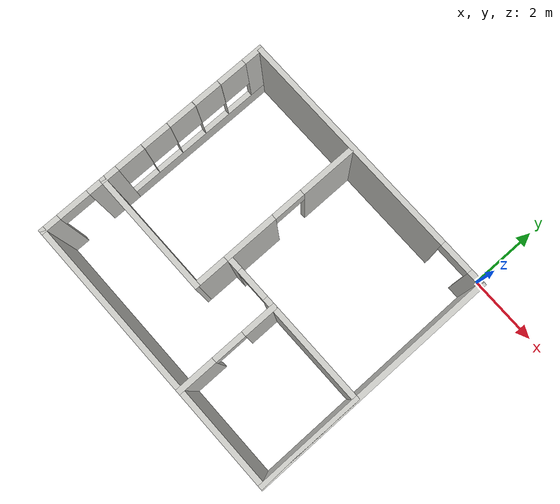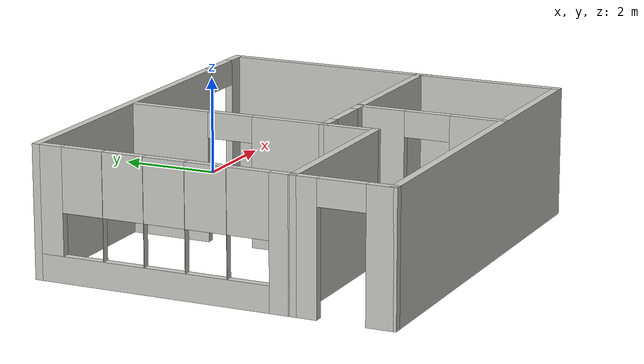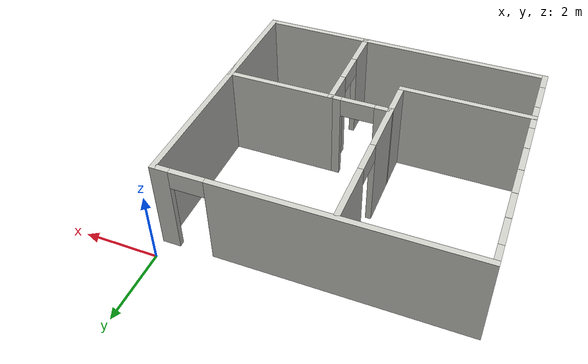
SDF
<?xml version='1.0'?>
<sdf version='1.7'>
  <model name='Four_room_new'>
    <pose>-3.90695 -3.74102 0 0 -0 0</pose>
    <link name='Wall_54'>
      <collision name='Wall_54_Collision'>
        <geometry>
          <box>
            <size>6.97687 0.15 2.5</size>
          </box>
        </geometry>
        <pose>0 0 1.25 0 -0 0</pose>
      </collision>
      <visual name='Wall_54_Visual'>
        <pose>0 0 1.25 0 -0 0</pose>
        <geometry>
          <box>
            <size>6.97687 0.15 2.5</size>
          </box>
        </geometry>
        <material>
          <script>
            <uri>file://media/materials/scripts/gazebo.material</uri>
            <name>Gazebo/CeilingTiled</name>
          </script>
          <ambient>1 1 1 1</ambient>
        </material>
        <meta>
          <layer>0</layer>
        </meta>
      </visual>
      <pose>3.92501 -0.252497 0 0 -0 -1.57078</pose>
    </link>
    <link name='Wall_56'>
      <collision name='Wall_56_Collision'>
        <geometry>
          <box>
            <size>8 0.15 2.5</size>
          </box>
        </geometry>
        <pose>0 0 1.25 0 -0 0</pose>
      </collision>
      <visual name='Wall_56_Visual'>
        <pose>0 0 1.25 0 -0 0</pose>
        <geometry>
          <box>
            <size>8 0.15 2.5</size>
          </box>
        </geometry>
        <material>
          <script>
            <uri>file://media/materials/scripts/gazebo.material</uri>
            <name>Gazebo/CeilingTiled</name>
          </script>
          <ambient>1 1 1 1</ambient>
        </material>
        <meta>
          <layer>0</layer>
        </meta>
      </visual>
      <pose>7e-05 -3.66601 0 0 -0 3.14159</pose>
    </link>
    <link name='Wall_58'>
      <collision name='Wall_58_Collision'>
        <geometry>
          <box>
            <size>3 0.15 2.5</size>
          </box>
        </geometry>
        <pose>0 0 1.25 0 -0 0</pose>
      </collision>
      <visual name='Wall_58_Visual'>
        <pose>0 0 1.25 0 -0 0</pose>
        <geometry>
          <box>
            <size>3 0.15 2.5</size>
          </box>
        </geometry>
        <material>
          <script>
            <uri>file://media/materials/scripts/gazebo.material</uri>
            <name>Gazebo/CeilingTiled</name>
          </script>
          <ambient>1 1 1 1</ambient>
        </material>
        <meta>
          <layer>0</layer>
        </meta>
      </visual>
      <pose>3.92507 -2.24101 0 0 -0 1.5708</pose>
    </link>
    <link name='Wall_59'>
      <collision name='Wall_59_Collision'>
        <geometry>
          <box>
            <size>3 0.15 2.5</size>
          </box>
        </geometry>
        <pose>0 0 1.25 0 -0 0</pose>
      </collision>
      <visual name='Wall_59_Visual'>
        <pose>0 0 1.25 0 -0 0</pose>
        <geometry>
          <box>
            <size>3 0.15 2.5</size>
          </box>
        </geometry>
        <material>
          <script>
            <uri>file://media/materials/scripts/gazebo.material</uri>
            <name>Gazebo/CeilingTiled</name>
          </script>
          <ambient>1 1 1 1</ambient>
        </material>
        <meta>
          <layer>0</layer>
        </meta>
      </visual>
      <pose>2.50007 -0.816012 0 0 -0 3.14159</pose>
    </link>
    <link name='Wall_60'>
      <pose>1.07507 -2.24101 0 0 -0 -1.5708</pose>
      <visual name='Wall_60_Visual_0'>
        <pose>-1.00086 0 1.25 0 -0 0</pose>
        <geometry>
          <box>
            <size>0.998281 0.15 2.5</size>
          </box>
        </geometry>
        <material>
          <script>
            <uri>file://media/materials/scripts/gazebo.material</uri>
            <name>Gazebo/CeilingTiled</name>
          </script>
          <ambient>1 1 1 1</ambient>
        </material>
        <meta>
          <layer>0</layer>
        </meta>
      </visual>
      <collision name='Wall_60_Collision_0'>
        <geometry>
          <box>
            <size>0.998281 0.15 2.5</size>
          </box>
        </geometry>
        <pose>-1.00086 0 1.25 0 -0 0</pose>
      </collision>
      <visual name='Wall_60_Visual_1'>
        <pose>0.94914 0 1.25 0 -0 0</pose>
        <geometry>
          <box>
            <size>1.10172 0.15 2.5</size>
          </box>
        </geometry>
        <material>
          <script>
            <uri>file://media/materials/scripts/gazebo.material</uri>
            <name>Gazebo/CeilingTiled</name>
          </script>
          <ambient>1 1 1 1</ambient>
        </material>
        <meta>
          <layer>0</layer>
        </meta>
      </visual>
      <collision name='Wall_60_Collision_1'>
        <geometry>
          <box>
            <size>1.10172 0.15 2.5</size>
          </box>
        </geometry>
        <pose>0.94914 0 1.25 0 -0 0</pose>
      </collision>
      <visual name='Wall_60_Visual_2'>
        <pose>-0.051719 0 2.25 0 -0 0</pose>
        <geometry>
          <box>
            <size>0.9 0.15 0.5</size>
          </box>
        </geometry>
        <material>
          <script>
            <uri>file://media/materials/scripts/gazebo.material</uri>
            <name>Gazebo/CeilingTiled</name>
          </script>
          <ambient>1 1 1 1</ambient>
        </material>
        <meta>
          <layer>0</layer>
        </meta>
      </visual>
      <collision name='Wall_60_Collision_2'>
        <geometry>
          <box>
            <size>0.9 0.15 0.5</size>
          </box>
        </geometry>
        <pose>-0.051719 0 2.25 0 -0 0</pose>
      </collision>
    </link>
    <link name='Wall_63'>
      <pose>-5.4e-05 3.16102 0 0 -0 0</pose>
      <visual name='Wall_63_Visual_0'>
        <pose>-0.694839 0 1.25 0 -0 0</pose>
        <geometry>
          <box>
            <size>6.61036 0.15 2.5</size>
          </box>
        </geometry>
        <material>
          <script>
            <uri>file://media/materials/scripts/gazebo.material</uri>
            <name>Gazebo/CeilingTiled</name>
          </script>
          <ambient>1 1 1 1</ambient>
        </material>
        <meta>
          <layer>0</layer>
        </meta>
      </visual>
      <collision name='Wall_63_Collision_0'>
        <geometry>
          <box>
            <size>6.61036 0.15 2.5</size>
          </box>
        </geometry>
        <pose>-0.694839 0 1.25 0 -0 0</pose>
      </collision>
      <visual name='Wall_63_Visual_1'>
        <pose>3.75518 0 1.25 0 -0 0</pose>
        <geometry>
          <box>
            <size>0.489677 0.15 2.5</size>
          </box>
        </geometry>
        <material>
          <script>
            <uri>file://media/materials/scripts/gazebo.material</uri>
            <name>Gazebo/CeilingTiled</name>
          </script>
          <ambient>1 1 1 1</ambient>
        </material>
        <meta>
          <layer>0</layer>
        </meta>
      </visual>
      <collision name='Wall_63_Collision_1'>
        <geometry>
          <box>
            <size>0.489677 0.15 2.5</size>
          </box>
        </geometry>
        <pose>3.75518 0 1.25 0 -0 0</pose>
      </collision>
      <visual name='Wall_63_Visual_2'>
        <pose>3.06034 0 2.25 0 -0 0</pose>
        <geometry>
          <box>
            <size>0.9 0.15 0.5</size>
          </box>
        </geometry>
        <material>
          <script>
            <uri>file://media/materials/scripts/gazebo.material</uri>
            <name>Gazebo/CeilingTiled</name>
          </script>
          <ambient>1 1 1 1</ambient>
        </material>
        <meta>
          <layer>0</layer>
        </meta>
      </visual>
      <collision name='Wall_63_Collision_2'>
        <geometry>
          <box>
            <size>0.9 0.15 0.5</size>
          </box>
        </geometry>
        <pose>3.06034 0 2.25 0 -0 0</pose>
      </collision>
    </link>
    <link name='Wall_65'>
      <pose>-3.92499 -2.741 0 0 -0 1.57086</pose>
      <visual name='Wall_65_Visual_0'>
        <pose>-0.718274 0 1.25 0 -0 0</pose>
        <geometry>
          <box>
            <size>0.563482 0.15 2.5</size>
          </box>
        </geometry>
        <material>
          <script>
            <uri>file://media/materials/scripts/gazebo.material</uri>
            <name>Gazebo/CeilingTiled</name>
          </script>
          <ambient>1 1 1 1</ambient>
        </material>
        <meta>
          <layer>0</layer>
        </meta>
      </visual>
      <collision name='Wall_65_Collision_0'>
        <geometry>
          <box>
            <size>0.563482 0.15 2.5</size>
          </box>
        </geometry>
        <pose>-0.718274 0 1.25 0 -0 0</pose>
      </collision>
      <visual name='Wall_65_Visual_1'>
        <pose>0.731741 0 1.25 0 -0 0</pose>
        <geometry>
          <box>
            <size>0.536547 0.15 2.5</size>
          </box>
        </geometry>
        <material>
          <script>
            <uri>file://media/materials/scripts/gazebo.material</uri>
            <name>Gazebo/CeilingTiled</name>
          </script>
          <ambient>1 1 1 1</ambient>
        </material>
        <meta>
          <layer>0</layer>
        </meta>
      </visual>
      <collision name='Wall_65_Collision_1'>
        <geometry>
          <box>
            <size>0.536547 0.15 2.5</size>
          </box>
        </geometry>
        <pose>0.731741 0 1.25 0 -0 0</pose>
      </collision>
      <visual name='Wall_65_Visual_2'>
        <pose>0.013467 0 2.25 0 -0 0</pose>
        <geometry>
          <box>
            <size>0.9 0.15 0.5</size>
          </box>
        </geometry>
        <material>
          <script>
            <uri>file://media/materials/scripts/gazebo.material</uri>
            <name>Gazebo/CeilingTiled</name>
          </script>
          <ambient>1 1 1 1</ambient>
        </material>
        <meta>
          <layer>0</layer>
        </meta>
      </visual>
      <collision name='Wall_65_Collision_2'>
        <geometry>
          <box>
            <size>0.9 0.15 0.5</size>
          </box>
        </geometry>
        <pose>0.013467 0 2.25 0 -0 0</pose>
      </collision>
    </link>
    <link name='Wall_66'>
      <collision name='Wall_66_Collision'>
        <geometry>
          <box>
            <size>3.55 0.15 2.5</size>
          </box>
        </geometry>
        <pose>0 0 1.25 0 -0 0</pose>
      </collision>
      <visual name='Wall_66_Visual'>
        <pose>0 0 1.25 0 -0 0</pose>
        <geometry>
          <box>
            <size>3.55 0.15 2.5</size>
          </box>
        </geometry>
        <material>
          <script>
            <uri>file://media/materials/scripts/gazebo.material</uri>
            <name>Gazebo/CeilingTiled</name>
          </script>
          <ambient>1 1 1 1</ambient>
        </material>
        <meta>
          <layer>0</layer>
        </meta>
      </visual>
      <pose>-2.22505 -1.81598 0 0 -0 0</pose>
    </link>
    <link name='Wall_68'>
      <pose>0.27507 -0.816012 0 0 -0 3.14159</pose>
      <visual name='Wall_68_Visual_0'>
        <pose>-0.692933 0 1.25 0 -0 0</pose>
        <geometry>
          <box>
            <size>0.364134 0.15 2.5</size>
          </box>
        </geometry>
        <material>
          <script>
            <uri>file://media/materials/scripts/gazebo.material</uri>
            <name>Gazebo/CeilingTiled</name>
          </script>
          <ambient>1 1 1 1</ambient>
        </material>
        <meta>
          <layer>0</layer>
        </meta>
      </visual>
      <collision name='Wall_68_Collision_0'>
        <geometry>
          <box>
            <size>0.364134 0.15 2.5</size>
          </box>
        </geometry>
        <pose>-0.692933 0 1.25 0 -0 0</pose>
      </collision>
      <visual name='Wall_68_Visual_1'>
        <pose>0.632067 0 1.25 0 -0 0</pose>
        <geometry>
          <box>
            <size>0.485866 0.15 2.5</size>
          </box>
        </geometry>
        <material>
          <script>
            <uri>file://media/materials/scripts/gazebo.material</uri>
            <name>Gazebo/CeilingTiled</name>
          </script>
          <ambient>1 1 1 1</ambient>
        </material>
        <meta>
          <layer>0</layer>
        </meta>
      </visual>
      <collision name='Wall_68_Collision_1'>
        <geometry>
          <box>
            <size>0.485866 0.15 2.5</size>
          </box>
        </geometry>
        <pose>0.632067 0 1.25 0 -0 0</pose>
      </collision>
      <visual name='Wall_68_Visual_2'>
        <pose>-0.060866 0 2.25 0 -0 0</pose>
        <geometry>
          <box>
            <size>0.9 0.15 0.5</size>
          </box>
        </geometry>
        <material>
          <script>
            <uri>file://media/materials/scripts/gazebo.material</uri>
            <name>Gazebo/CeilingTiled</name>
          </script>
          <ambient>1 1 1 1</ambient>
        </material>
        <meta>
          <layer>0</layer>
        </meta>
      </visual>
      <collision name='Wall_68_Collision_2'>
        <geometry>
          <box>
            <size>0.9 0.15 0.5</size>
          </box>
        </geometry>
        <pose>-0.060866 0 2.25 0 -0 0</pose>
      </collision>
    </link>
    <link name='Wall_69'>
      <collision name='Wall_69_Collision'>
        <geometry>
          <box>
            <size>1.14997 0.15 2.5</size>
          </box>
        </geometry>
        <pose>0 0 1.25 0 -0 0</pose>
      </collision>
      <visual name='Wall_69_Visual'>
        <pose>0 0 1.25 0 -0 0</pose>
        <geometry>
          <box>
            <size>1.14997 0.15 2.5</size>
          </box>
        </geometry>
        <material>
          <script>
            <uri>file://media/materials/scripts/gazebo.material</uri>
            <name>Gazebo/CeilingTiled</name>
          </script>
          <ambient>1 1 1 1</ambient>
        </material>
        <meta>
          <layer>0</layer>
        </meta>
      </visual>
      <pose>-0.524992 -1.316 0 0 -0 -1.57092</pose>
    </link>
    <link name='Wall_71'>
      <pose>-0.52493 1.10899 0 0 -0 1.5708</pose>
      <visual name='Wall_71_Visual_0'>
        <pose>-1.24547 0 1.25 0 -0 0</pose>
        <geometry>
          <box>
            <size>1.50906 0.15 2.5</size>
          </box>
        </geometry>
        <material>
          <script>
            <uri>file://media/materials/scripts/gazebo.material</uri>
            <name>Gazebo/CeilingTiled</name>
          </script>
          <ambient>1 1 1 1</ambient>
        </material>
        <meta>
          <layer>0</layer>
        </meta>
      </visual>
      <collision name='Wall_71_Collision_0'>
        <geometry>
          <box>
            <size>1.50906 0.15 2.5</size>
          </box>
        </geometry>
        <pose>-1.24547 0 1.25 0 -0 0</pose>
      </collision>
      <visual name='Wall_71_Visual_1'>
        <pose>1.20453 0 1.25 0 -0 0</pose>
        <geometry>
          <box>
            <size>1.59094 0.15 2.5</size>
          </box>
        </geometry>
        <material>
          <script>
            <uri>file://media/materials/scripts/gazebo.material</uri>
            <name>Gazebo/CeilingTiled</name>
          </script>
          <ambient>1 1 1 1</ambient>
        </material>
        <meta>
          <layer>0</layer>
        </meta>
      </visual>
      <collision name='Wall_71_Collision_1'>
        <geometry>
          <box>
            <size>1.59094 0.15 2.5</size>
          </box>
        </geometry>
        <pose>1.20453 0 1.25 0 -0 0</pose>
      </collision>
      <visual name='Wall_71_Visual_2'>
        <pose>-0.040941 0 2.25 0 -0 0</pose>
        <geometry>
          <box>
            <size>0.9 0.15 0.5</size>
          </box>
        </geometry>
        <material>
          <script>
            <uri>file://media/materials/scripts/gazebo.material</uri>
            <name>Gazebo/CeilingTiled</name>
          </script>
          <ambient>1 1 1 1</ambient>
        </material>
        <meta>
          <layer>0</layer>
        </meta>
      </visual>
      <collision name='Wall_71_Collision_2'>
        <geometry>
          <box>
            <size>0.9 0.15 0.5</size>
          </box>
        </geometry>
        <pose>-0.040941 0 2.25 0 -0 0</pose>
      </collision>
    </link>
    <link name='Wall_77'>
      <pose>-3.92505 0.672517 0 0 -0 1.5708</pose>
      <visual name='Wall_77_Visual_0'>
        <pose>-2.30892 0 1.25 0 -0 0</pose>
        <geometry>
          <box>
            <size>0.509155 0.15 2.5</size>
          </box>
        </geometry>
        <material>
          <script>
            <uri>file://media/materials/scripts/gazebo.material</uri>
            <name>Gazebo/CeilingTiled</name>
          </script>
          <ambient>1 1 1 1</ambient>
        </material>
        <meta>
          <layer>0</layer>
        </meta>
      </visual>
      <collision name='Wall_77_Collision_0'>
        <geometry>
          <box>
            <size>0.509155 0.15 2.5</size>
          </box>
        </geometry>
        <pose>-2.30892 0 1.25 0 -0 0</pose>
      </collision>
      <visual name='Wall_77_Visual_1'>
        <pose>0.254578 0 0.25 0 -0 0</pose>
        <geometry>
          <box>
            <size>4.61784 0.15 0.5</size>
          </box>
        </geometry>
        <material>
          <script>
            <uri>file://media/materials/scripts/gazebo.material</uri>
            <name>Gazebo/CeilingTiled</name>
          </script>
          <ambient>1 1 1 1</ambient>
        </material>
        <meta>
          <layer>0</layer>
        </meta>
      </visual>
      <collision name='Wall_77_Collision_1'>
        <geometry>
          <box>
            <size>4.61784 0.15 0.5</size>
          </box>
        </geometry>
        <pose>0.254578 0 0.25 0 -0 0</pose>
      </collision>
      <visual name='Wall_77_Visual_2'>
        <pose>-1.25098 0 1.5 0 -0 0</pose>
        <geometry>
          <box>
            <size>0.006725 0.15 2</size>
          </box>
        </geometry>
        <material>
          <script>
            <uri>file://media/materials/scripts/gazebo.material</uri>
            <name>Gazebo/CeilingTiled</name>
          </script>
          <ambient>1 1 1 1</ambient>
        </material>
        <meta>
          <layer>0</layer>
        </meta>
      </visual>
      <collision name='Wall_77_Collision_2'>
        <geometry>
          <box>
            <size>0.006725 0.15 2</size>
          </box>
        </geometry>
        <pose>-1.25098 0 1.5 0 -0 0</pose>
      </collision>
      <visual name='Wall_77_Visual_3'>
        <pose>-0.444257 0 1.5 0 -0 0</pose>
        <geometry>
          <box>
            <size>0.006725 0.15 2</size>
          </box>
        </geometry>
        <material>
          <script>
            <uri>file://media/materials/scripts/gazebo.material</uri>
            <name>Gazebo/CeilingTiled</name>
          </script>
          <ambient>1 1 1 1</ambient>
        </material>
        <meta>
          <layer>0</layer>
        </meta>
      </visual>
      <collision name='Wall_77_Collision_3'>
        <geometry>
          <box>
            <size>0.006725 0.15 2</size>
          </box>
        </geometry>
        <pose>-0.444257 0 1.5 0 -0 0</pose>
      </collision>
      <visual name='Wall_77_Visual_4'>
        <pose>0.362468 0 1.5 0 -0 0</pose>
        <geometry>
          <box>
            <size>0.006725 0.15 2</size>
          </box>
        </geometry>
        <material>
          <script>
            <uri>file://media/materials/scripts/gazebo.material</uri>
            <name>Gazebo/CeilingTiled</name>
          </script>
          <ambient>1 1 1 1</ambient>
        </material>
        <meta>
          <layer>0</layer>
        </meta>
      </visual>
      <collision name='Wall_77_Collision_4'>
        <geometry>
          <box>
            <size>0.006725 0.15 2</size>
          </box>
        </geometry>
        <pose>0.362468 0 1.5 0 -0 0</pose>
      </collision>
      <visual name='Wall_77_Visual_5'>
        <pose>1.16919 0 1.5 0 -0 0</pose>
        <geometry>
          <box>
            <size>0.006725 0.15 2</size>
          </box>
        </geometry>
        <material>
          <script>
            <uri>file://media/materials/scripts/gazebo.material</uri>
            <name>Gazebo/CeilingTiled</name>
          </script>
          <ambient>1 1 1 1</ambient>
        </material>
        <meta>
          <layer>0</layer>
        </meta>
      </visual>
      <collision name='Wall_77_Collision_5'>
        <geometry>
          <box>
            <size>0.006725 0.15 2</size>
          </box>
        </geometry>
        <pose>1.16919 0 1.5 0 -0 0</pose>
      </collision>
      <visual name='Wall_77_Visual_6'>
        <pose>2.26803 0 1.5 0 -0 0</pose>
        <geometry>
          <box>
            <size>0.590945 0.15 2</size>
          </box>
        </geometry>
        <material>
          <script>
            <uri>file://media/materials/scripts/gazebo.material</uri>
            <name>Gazebo/CeilingTiled</name>
          </script>
          <ambient>1 1 1 1</ambient>
        </material>
        <meta>
          <layer>0</layer>
        </meta>
      </visual>
      <collision name='Wall_77_Collision_6'>
        <geometry>
          <box>
            <size>0.590945 0.15 2</size>
          </box>
        </geometry>
        <pose>2.26803 0 1.5 0 -0 0</pose>
      </collision>
      <visual name='Wall_77_Visual_7'>
        <pose>-1.65434 0 1.9 0 -0 0</pose>
        <geometry>
          <box>
            <size>0.8 0.15 1.2</size>
          </box>
        </geometry>
        <material>
          <script>
            <uri>file://media/materials/scripts/gazebo.material</uri>
            <name>Gazebo/CeilingTiled</name>
          </script>
          <ambient>1 1 1 1</ambient>
        </material>
        <meta>
          <layer>0</layer>
        </meta>
      </visual>
      <collision name='Wall_77_Collision_7'>
        <geometry>
          <box>
            <size>0.8 0.15 1.2</size>
          </box>
        </geometry>
        <pose>-1.65434 0 1.9 0 -0 0</pose>
      </collision>
      <visual name='Wall_77_Visual_8'>
        <pose>-0.84762 0 1.9 0 -0 0</pose>
        <geometry>
          <box>
            <size>0.8 0.15 1.2</size>
          </box>
        </geometry>
        <material>
          <script>
            <uri>file://media/materials/scripts/gazebo.material</uri>
            <name>Gazebo/CeilingTiled</name>
          </script>
          <ambient>1 1 1 1</ambient>
        </material>
        <meta>
          <layer>0</layer>
        </meta>
      </visual>
      <collision name='Wall_77_Collision_8'>
        <geometry>
          <box>
            <size>0.8 0.15 1.2</size>
          </box>
        </geometry>
        <pose>-0.84762 0 1.9 0 -0 0</pose>
      </collision>
      <visual name='Wall_77_Visual_9'>
        <pose>-0.040895 0 1.9 0 -0 0</pose>
        <geometry>
          <box>
            <size>0.8 0.15 1.2</size>
          </box>
        </geometry>
        <material>
          <script>
            <uri>file://media/materials/scripts/gazebo.material</uri>
            <name>Gazebo/CeilingTiled</name>
          </script>
          <ambient>1 1 1 1</ambient>
        </material>
        <meta>
          <layer>0</layer>
        </meta>
      </visual>
      <collision name='Wall_77_Collision_9'>
        <geometry>
          <box>
            <size>0.8 0.15 1.2</size>
          </box>
        </geometry>
        <pose>-0.040895 0 1.9 0 -0 0</pose>
      </collision>
      <visual name='Wall_77_Visual_10'>
        <pose>0.76583 0 1.9 0 -0 0</pose>
        <geometry>
          <box>
            <size>0.8 0.15 1.2</size>
          </box>
        </geometry>
        <material>
          <script>
            <uri>file://media/materials/scripts/gazebo.material</uri>
            <name>Gazebo/CeilingTiled</name>
          </script>
          <ambient>1 1 1 1</ambient>
        </material>
        <meta>
          <layer>0</layer>
        </meta>
      </visual>
      <collision name='Wall_77_Collision_10'>
        <geometry>
          <box>
            <size>0.8 0.15 1.2</size>
          </box>
        </geometry>
        <pose>0.76583 0 1.9 0 -0 0</pose>
      </collision>
      <visual name='Wall_77_Visual_11'>
        <pose>1.57255 0 1.9 0 -0 0</pose>
        <geometry>
          <box>
            <size>0.8 0.15 1.2</size>
          </box>
        </geometry>
        <material>
          <script>
            <uri>file://media/materials/scripts/gazebo.material</uri>
            <name>Gazebo/CeilingTiled</name>
          </script>
          <ambient>1 1 1 1</ambient>
        </material>
        <meta>
          <layer>0</layer>
        </meta>
      </visual>
      <collision name='Wall_77_Collision_11'>
        <geometry>
          <box>
            <size>0.8 0.15 1.2</size>
          </box>
        </geometry>
        <pose>1.57255 0 1.9 0 -0 0</pose>
      </collision>
    </link>
    <static>1</static>
  </model>
</sdf>
